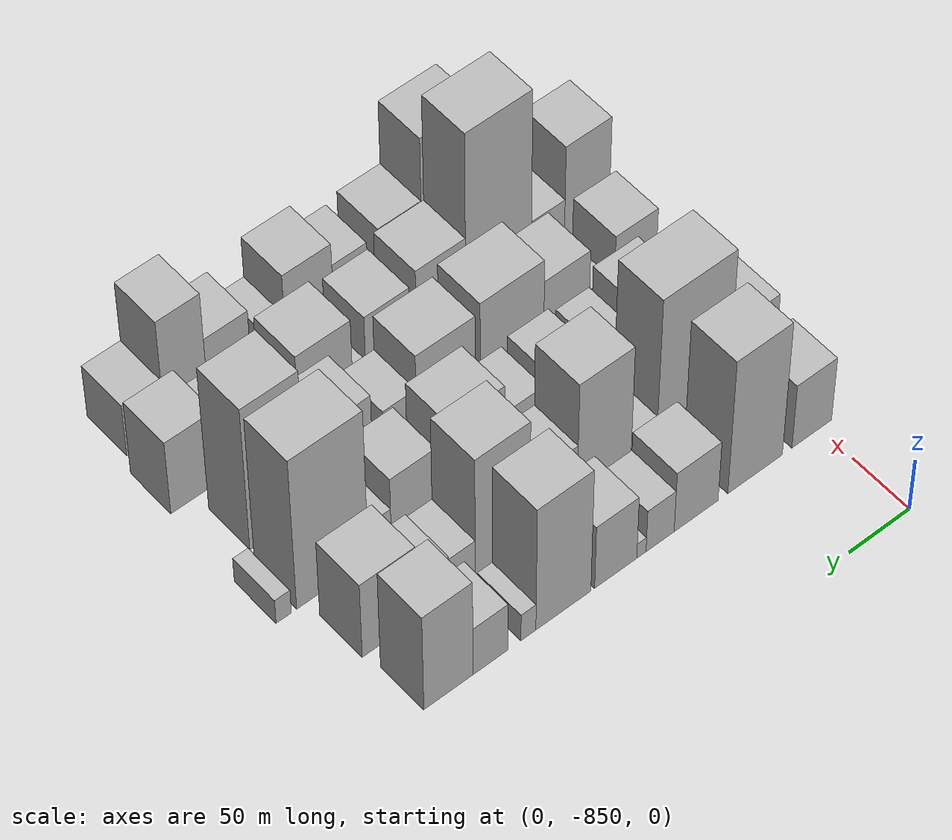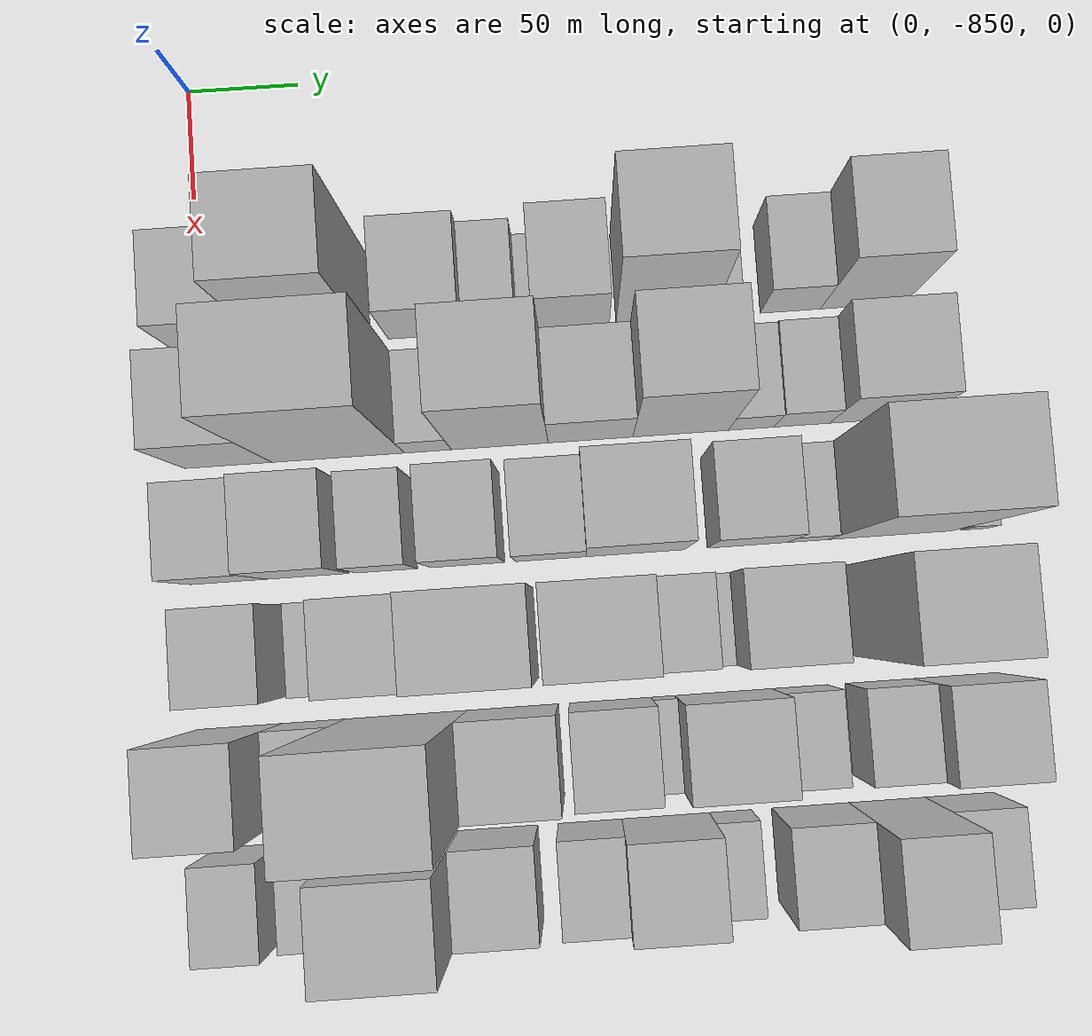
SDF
<sdf version="1.6">
 <world name="default">
  <model name="building_1">
   <static>1</static>
   <pose>100.0000 -843.3989 0 0.000000 0.000000 0.000000</pose>
   <link name="link">
    <pose>0 0 31.50 0 0 0</pose>
    <collision name="collision"><geometry><box><size>40.0000 33.2022 63.0000</size></box></geometry></collision>
    <visual name="visual">
     <cast_shadows>0</cast_shadows>
     <geometry><box><size>40.0000 33.2022 63.0000</size></box></geometry>
     <material>
      <script>
       <uri>model://HANNAS_wall/materials/scripts</uri>
       <uri>model://HANNAS_wall/materials/textures</uri>
       <name>vrc/HANNAS_wall</name>
      </script>
     </material>
    </visual>
   </link>
  </model>
  <model name="building_2">
   <static>1</static>
   <pose>100.0000 -796.2391 0 0.000000 0.000000 0.000000</pose>
   <link name="link">
    <pose>0 0 66.00 0 0 0</pose>
    <collision name="collision"><geometry><box><size>40.0000 45.1174 132.0000</size></box></geometry></collision>
    <visual name="visual">
     <cast_shadows>0</cast_shadows>
     <geometry><box><size>40.0000 45.1174 132.0000</size></box></geometry>
     <material>
      <script>
       <uri>model://HANNAS_wall/materials/scripts</uri>
       <uri>model://HANNAS_wall/materials/textures</uri>
       <name>vrc/HANNAS_wall</name>
      </script>
     </material>
    </visual>
   </link>
  </model>
  <model name="building_3">
   <static>1</static>
   <pose>100.0000 -747.7639 0 0.000000 0.000000 0.000000</pose>
   <link name="link">
    <pose>0 0 30.00 0 0 0</pose>
    <collision name="collision"><geometry><box><size>40.0000 35.8329 60.0000</size></box></geometry></collision>
    <visual name="visual">
     <cast_shadows>0</cast_shadows>
     <geometry><box><size>40.0000 35.8329 60.0000</size></box></geometry>
     <material>
      <script>
       <uri>model://HANNAS_wall/materials/scripts</uri>
       <uri>model://HANNAS_wall/materials/textures</uri>
       <name>vrc/HANNAS_wall</name>
      </script>
     </material>
    </visual>
   </link>
  </model>
  <model name="building_4">
   <static>1</static>
   <pose>100.0000 -718.4597 0 0.000000 0.000000 0.000000</pose>
   <link name="link">
    <pose>0 0 21.00 0 0 0</pose>
    <collision name="collision"><geometry><box><size>40.0000 22.7755 42.0000</size></box></geometry></collision>
    <visual name="visual">
     <cast_shadows>0</cast_shadows>
     <geometry><box><size>40.0000 22.7755 42.0000</size></box></geometry>
     <material>
      <script>
       <uri>model://HANNAS_wall/materials/scripts</uri>
       <uri>model://HANNAS_wall/materials/textures</uri>
       <name>vrc/HANNAS_wall</name>
      </script>
     </material>
    </visual>
   </link>
  </model>
  <model name="building_5">
   <static>1</static>
   <pose>100.0000 -703.3240 0 0.000000 0.000000 0.000000</pose>
   <link name="link">
    <pose>0 0 7.50 0 0 0</pose>
    <collision name="collision"><geometry><box><size>40.0000 7.4958 15.0000</size></box></geometry></collision>
    <visual name="visual">
     <cast_shadows>0</cast_shadows>
     <geometry><box><size>40.0000 7.4958 15.0000</size></box></geometry>
     <material>
      <script>
       <uri>model://HANNAS_wall/materials/scripts</uri>
       <uri>model://HANNAS_wall/materials/textures</uri>
       <name>vrc/HANNAS_wall</name>
      </script>
     </material>
    </visual>
   </link>
  </model>
  <model name="building_6">
   <static>1</static>
   <pose>100.0000 -682.7503 0 0.000000 0.000000 0.000000</pose>
   <link name="link">
    <pose>0 0 31.50 0 0 0</pose>
    <collision name="collision"><geometry><box><size>40.0000 33.6517 63.0000</size></box></geometry></collision>
    <visual name="visual">
     <cast_shadows>0</cast_shadows>
     <geometry><box><size>40.0000 33.6517 63.0000</size></box></geometry>
     <material>
      <script>
       <uri>model://HANNAS_wall/materials/scripts</uri>
       <uri>model://HANNAS_wall/materials/textures</uri>
       <name>vrc/HANNAS_wall</name>
      </script>
     </material>
    </visual>
   </link>
  </model>
  <model name="building_7">
   <static>1</static>
   <pose>100.0000 -641.1731 0 0.000000 0.000000 0.000000</pose>
   <link name="link">
    <pose>0 0 61.50 0 0 0</pose>
    <collision name="collision"><geometry><box><size>40.0000 43.5027 123.0000</size></box></geometry></collision>
    <visual name="visual">
     <cast_shadows>0</cast_shadows>
     <geometry><box><size>40.0000 43.5027 123.0000</size></box></geometry>
     <material>
      <script>
       <uri>model://HANNAS_wall/materials/scripts</uri>
       <uri>model://HANNAS_wall/materials/textures</uri>
       <name>vrc/HANNAS_wall</name>
      </script>
     </material>
    </visual>
   </link>
  </model>
  <model name="building_8">
   <static>1</static>
   <pose>100.0000 -613.5712 0 0.000000 0.000000 0.000000</pose>
   <link name="link">
    <pose>0 0 13.50 0 0 0</pose>
    <collision name="collision"><geometry><box><size>40.0000 11.7012 27.0000</size></box></geometry></collision>
    <visual name="visual">
     <cast_shadows>0</cast_shadows>
     <geometry><box><size>40.0000 11.7012 27.0000</size></box></geometry>
     <material>
      <script>
       <uri>model://HANNAS_wall/materials/scripts</uri>
       <uri>model://HANNAS_wall/materials/textures</uri>
       <name>vrc/HANNAS_wall</name>
      </script>
     </material>
    </visual>
   </link>
  </model>
  <model name="building_9">
   <static>1</static>
   <pose>100.0000 -584.1085 0 0.000000 0.000000 0.000000</pose>
   <link name="link">
    <pose>0 0 24.00 0 0 0</pose>
    <collision name="collision"><geometry><box><size>40.0000 27.2240 48.0000</size></box></geometry></collision>
    <visual name="visual">
     <cast_shadows>0</cast_shadows>
     <geometry><box><size>40.0000 27.2240 48.0000</size></box></geometry>
     <material>
      <script>
       <uri>model://HANNAS_wall/materials/scripts</uri>
       <uri>model://HANNAS_wall/materials/textures</uri>
       <name>vrc/HANNAS_wall</name>
      </script>
     </material>
    </visual>
   </link>
  </model>
  <model name="building_10">
   <static>1</static>
   <pose>100.0000 -551.5322 0 0.000000 0.000000 0.000000</pose>
   <link name="link">
    <pose>0 0 48.00 0 0 0</pose>
    <collision name="collision"><geometry><box><size>40.0000 37.9287 96.0000</size></box></geometry></collision>
    <visual name="visual">
     <cast_shadows>0</cast_shadows>
     <geometry><box><size>40.0000 37.9287 96.0000</size></box></geometry>
     <material>
      <script>
       <uri>model://HANNAS_wall/materials/scripts</uri>
       <uri>model://HANNAS_wall/materials/textures</uri>
       <name>vrc/HANNAS_wall</name>
      </script>
     </material>
    </visual>
   </link>
  </model>
  <model name="building_57">
   <static>1</static>
   <pose>152.0000 -840.4779 0 0.000000 0.000000 0.000000</pose>
   <link name="link">
    <pose>0 0 37.50 0 0 0</pose>
    <collision name="collision"><geometry><box><size>40.0000 39.0442 75.0000</size></box></geometry></collision>
    <visual name="visual">
     <cast_shadows>0</cast_shadows>
     <geometry><box><size>40.0000 39.0442 75.0000</size></box></geometry>
     <material>
      <script>
       <uri>model://HANNAS_wall/materials/scripts</uri>
       <uri>model://HANNAS_wall/materials/textures</uri>
       <name>vrc/HANNAS_wall</name>
      </script>
     </material>
    </visual>
   </link>
  </model>
  <model name="building_58">
   <static>1</static>
   <pose>152.0000 -791.2860 0 0.000000 0.000000 0.000000</pose>
   <link name="link">
    <pose>0 0 75.00 0 0 0</pose>
    <collision name="collision"><geometry><box><size>40.0000 59.3396 150.0000</size></box></geometry></collision>
    <visual name="visual">
     <cast_shadows>0</cast_shadows>
     <geometry><box><size>40.0000 59.3396 150.0000</size></box></geometry>
     <material>
      <script>
       <uri>model://HANNAS_wall/materials/scripts</uri>
       <uri>model://HANNAS_wall/materials/textures</uri>
       <name>vrc/HANNAS_wall</name>
      </script>
     </material>
    </visual>
   </link>
  </model>
  <model name="building_59">
   <static>1</static>
   <pose>152.0000 -751.0752 0 0.000000 0.000000 0.000000</pose>
   <link name="link">
    <pose>0 0 18.00 0 0 0</pose>
    <collision name="collision"><geometry><box><size>40.0000 21.0821 36.0000</size></box></geometry></collision>
    <visual name="visual">
     <cast_shadows>0</cast_shadows>
     <geometry><box><size>40.0000 21.0821 36.0000</size></box></geometry>
     <material>
      <script>
       <uri>model://HANNAS_wall/materials/scripts</uri>
       <uri>model://HANNAS_wall/materials/textures</uri>
       <name>vrc/HANNAS_wall</name>
      </script>
     </material>
    </visual>
   </link>
  </model>
  <model name="building_60">
   <static>1</static>
   <pose>152.0000 -718.7713 0 0.000000 0.000000 0.000000</pose>
   <link name="link">
    <pose>0 0 61.50 0 0 0</pose>
    <collision name="collision"><geometry><box><size>40.0000 43.5258 123.0000</size></box></geometry></collision>
    <visual name="visual">
     <cast_shadows>0</cast_shadows>
     <geometry><box><size>40.0000 43.5258 123.0000</size></box></geometry>
     <material>
      <script>
       <uri>model://HANNAS_wall/materials/scripts</uri>
       <uri>model://HANNAS_wall/materials/textures</uri>
       <name>vrc/HANNAS_wall</name>
      </script>
     </material>
    </visual>
   </link>
  </model>
  <model name="building_61">
   <static>1</static>
   <pose>152.0000 -678.1103 0 0.000000 0.000000 0.000000</pose>
   <link name="link">
    <pose>0 0 31.50 0 0 0</pose>
    <collision name="collision"><geometry><box><size>40.0000 37.7961 63.0000</size></box></geometry></collision>
    <visual name="visual">
     <cast_shadows>0</cast_shadows>
     <geometry><box><size>40.0000 37.7961 63.0000</size></box></geometry>
     <material>
      <script>
       <uri>model://HANNAS_wall/materials/scripts</uri>
       <uri>model://HANNAS_wall/materials/textures</uri>
       <name>vrc/HANNAS_wall</name>
      </script>
     </material>
    </visual>
   </link>
  </model>
  <model name="building_62">
   <static>1</static>
   <pose>152.0000 -637.7423 0 0.000000 0.000000 0.000000</pose>
   <link name="link">
    <pose>0 0 60.00 0 0 0</pose>
    <collision name="collision"><geometry><box><size>40.0000 42.9400 120.0000</size></box></geometry></collision>
    <visual name="visual">
     <cast_shadows>0</cast_shadows>
     <geometry><box><size>40.0000 42.9400 120.0000</size></box></geometry>
     <material>
      <script>
       <uri>model://HANNAS_wall/materials/scripts</uri>
       <uri>model://HANNAS_wall/materials/textures</uri>
       <name>vrc/HANNAS_wall</name>
      </script>
     </material>
    </visual>
   </link>
  </model>
  <model name="building_63">
   <static>1</static>
   <pose>152.0000 -605.9749 0 0.000000 0.000000 0.000000</pose>
   <link name="link">
    <pose>0 0 19.50 0 0 0</pose>
    <collision name="collision"><geometry><box><size>40.0000 20.5949 39.0000</size></box></geometry></collision>
    <visual name="visual">
     <cast_shadows>0</cast_shadows>
     <geometry><box><size>40.0000 20.5949 39.0000</size></box></geometry>
     <material>
      <script>
       <uri>model://HANNAS_wall/materials/scripts</uri>
       <uri>model://HANNAS_wall/materials/textures</uri>
       <name>vrc/HANNAS_wall</name>
      </script>
     </material>
    </visual>
   </link>
  </model>
  <model name="building_64">
   <static>1</static>
   <pose>152.0000 -583.1113 0 0.000000 0.000000 0.000000</pose>
   <link name="link">
    <pose>0 0 21.00 0 0 0</pose>
    <collision name="collision"><geometry><box><size>40.0000 25.1323 42.0000</size></box></geometry></collision>
    <visual name="visual">
     <cast_shadows>0</cast_shadows>
     <geometry><box><size>40.0000 25.1323 42.0000</size></box></geometry>
     <material>
      <script>
       <uri>model://HANNAS_wall/materials/scripts</uri>
       <uri>model://HANNAS_wall/materials/textures</uri>
       <name>vrc/HANNAS_wall</name>
      </script>
     </material>
    </visual>
   </link>
  </model>
  <model name="building_65">
   <static>1</static>
   <pose>152.0000 -549.5012 0 0.000000 0.000000 0.000000</pose>
   <link name="link">
    <pose>0 0 37.50 0 0 0</pose>
    <collision name="collision"><geometry><box><size>40.0000 42.0879 75.0000</size></box></geometry></collision>
    <visual name="visual">
     <cast_shadows>0</cast_shadows>
     <geometry><box><size>40.0000 42.0879 75.0000</size></box></geometry>
     <material>
      <script>
       <uri>model://HANNAS_wall/materials/scripts</uri>
       <uri>model://HANNAS_wall/materials/textures</uri>
       <name>vrc/HANNAS_wall</name>
      </script>
     </material>
    </visual>
   </link>
  </model>
  <model name="building_106">
   <static>1</static>
   <pose>204.0000 -842.9512 0 0.000000 0.000000 0.000000</pose>
   <link name="link">
    <pose>0 0 30.00 0 0 0</pose>
    <collision name="collision"><geometry><box><size>40.0000 34.0976 60.0000</size></box></geometry></collision>
    <visual name="visual">
     <cast_shadows>0</cast_shadows>
     <geometry><box><size>40.0000 34.0976 60.0000</size></box></geometry>
     <material>
      <script>
       <uri>model://HANNAS_wall/materials/scripts</uri>
       <uri>model://HANNAS_wall/materials/textures</uri>
       <name>vrc/HANNAS_wall</name>
      </script>
     </material>
    </visual>
   </link>
  </model>
  <model name="building_107">
   <static>1</static>
   <pose>204.0000 -807.5186 0 0.000000 0.000000 0.000000</pose>
   <link name="link">
    <pose>0 0 36.00 0 0 0</pose>
    <collision name="collision"><geometry><box><size>40.0000 36.7675 72.0000</size></box></geometry></collision>
    <visual name="visual">
     <cast_shadows>0</cast_shadows>
     <geometry><box><size>40.0000 36.7675 72.0000</size></box></geometry>
     <material>
      <script>
       <uri>model://HANNAS_wall/materials/scripts</uri>
       <uri>model://HANNAS_wall/materials/textures</uri>
       <name>vrc/HANNAS_wall</name>
      </script>
     </material>
    </visual>
   </link>
  </model>
  <model name="building_108">
   <static>1</static>
   <pose>204.0000 -772.5752 0 0.000000 0.000000 0.000000</pose>
   <link name="link">
    <pose>0 0 27.00 0 0 0</pose>
    <collision name="collision"><geometry><box><size>40.0000 27.1193 54.0000</size></box></geometry></collision>
    <visual name="visual">
     <cast_shadows>0</cast_shadows>
     <geometry><box><size>40.0000 27.1193 54.0000</size></box></geometry>
     <material>
      <script>
       <uri>model://HANNAS_wall/materials/scripts</uri>
       <uri>model://HANNAS_wall/materials/textures</uri>
       <name>vrc/HANNAS_wall</name>
      </script>
     </material>
    </visual>
   </link>
  </model>
  <model name="building_109">
   <static>1</static>
   <pose>204.0000 -736.5314 0 0.000000 0.000000 0.000000</pose>
   <link name="link">
    <pose>0 0 30.00 0 0 0</pose>
    <collision name="collision"><geometry><box><size>40.0000 32.9684 60.0000</size></box></geometry></collision>
    <visual name="visual">
     <cast_shadows>0</cast_shadows>
     <geometry><box><size>40.0000 32.9684 60.0000</size></box></geometry>
     <material>
      <script>
       <uri>model://HANNAS_wall/materials/scripts</uri>
       <uri>model://HANNAS_wall/materials/textures</uri>
       <name>vrc/HANNAS_wall</name>
      </script>
     </material>
    </visual>
   </link>
  </model>
  <model name="building_110">
   <static>1</static>
   <pose>204.0000 -699.4011 0 0.000000 0.000000 0.000000</pose>
   <link name="link">
    <pose>0 0 27.00 0 0 0</pose>
    <collision name="collision"><geometry><box><size>40.0000 31.2922 54.0000</size></box></geometry></collision>
    <visual name="visual">
     <cast_shadows>0</cast_shadows>
     <geometry><box><size>40.0000 31.2922 54.0000</size></box></geometry>
     <material>
      <script>
       <uri>model://HANNAS_wall/materials/scripts</uri>
       <uri>model://HANNAS_wall/materials/textures</uri>
       <name>vrc/HANNAS_wall</name>
      </script>
     </material>
    </visual>
   </link>
  </model>
  <model name="building_111">
   <static>1</static>
   <pose>204.0000 -661.7496 0 0.000000 0.000000 0.000000</pose>
   <link name="link">
    <pose>0 0 40.50 0 0 0</pose>
    <collision name="collision"><geometry><box><size>40.0000 44.0109 81.0000</size></box></geometry></collision>
    <visual name="visual">
     <cast_shadows>0</cast_shadows>
     <geometry><box><size>40.0000 44.0109 81.0000</size></box></geometry>
     <material>
      <script>
       <uri>model://HANNAS_wall/materials/scripts</uri>
       <uri>model://HANNAS_wall/materials/textures</uri>
       <name>vrc/HANNAS_wall</name>
      </script>
     </material>
    </visual>
   </link>
  </model>
  <model name="building_112">
   <static>1</static>
   <pose>204.0000 -611.8717 0 0.000000 0.000000 0.000000</pose>
   <link name="link">
    <pose>0 0 33.00 0 0 0</pose>
    <collision name="collision"><geometry><box><size>40.0000 35.7449 66.0000</size></box></geometry></collision>
    <visual name="visual">
     <cast_shadows>0</cast_shadows>
     <geometry><box><size>40.0000 35.7449 66.0000</size></box></geometry>
     <material>
      <script>
       <uri>model://HANNAS_wall/materials/scripts</uri>
       <uri>model://HANNAS_wall/materials/textures</uri>
       <name>vrc/HANNAS_wall</name>
      </script>
     </material>
    </visual>
   </link>
  </model>
  <model name="building_113">
   <static>1</static>
   <pose>204.0000 -584.9540 0 0.000000 0.000000 0.000000</pose>
   <link name="link">
    <pose>0 0 18.00 0 0 0</pose>
    <collision name="collision"><geometry><box><size>40.0000 18.0905 36.0000</size></box></geometry></collision>
    <visual name="visual">
     <cast_shadows>0</cast_shadows>
     <geometry><box><size>40.0000 18.0905 36.0000</size></box></geometry>
     <material>
      <script>
       <uri>model://HANNAS_wall/materials/scripts</uri>
       <uri>model://HANNAS_wall/materials/textures</uri>
       <name>vrc/HANNAS_wall</name>
      </script>
     </material>
    </visual>
   </link>
  </model>
  <model name="building_114">
   <static>1</static>
   <pose>204.0000 -548.1578 0 0.000000 0.000000 0.000000</pose>
   <link name="link">
    <pose>0 0 75.00 0 0 0</pose>
    <collision name="collision"><geometry><box><size>40.0000 55.5019 150.0000</size></box></geometry></collision>
    <visual name="visual">
     <cast_shadows>0</cast_shadows>
     <geometry><box><size>40.0000 55.5019 150.0000</size></box></geometry>
     <material>
      <script>
       <uri>model://HANNAS_wall/materials/scripts</uri>
       <uri>model://HANNAS_wall/materials/textures</uri>
       <name>vrc/HANNAS_wall</name>
      </script>
     </material>
    </visual>
   </link>
  </model>
  <model name="building_115">
   <static>1</static>
   <pose>204.0000 -510.5552 0 0.000000 0.000000 0.000000</pose>
   <link name="link">
    <pose>0 0 12.00 0 0 0</pose>
    <collision name="collision"><geometry><box><size>40.0000 11.7034 24.0000</size></box></geometry></collision>
    <visual name="visual">
     <cast_shadows>0</cast_shadows>
     <geometry><box><size>40.0000 11.7034 24.0000</size></box></geometry>
     <material>
      <script>
       <uri>model://HANNAS_wall/materials/scripts</uri>
       <uri>model://HANNAS_wall/materials/textures</uri>
       <name>vrc/HANNAS_wall</name>
      </script>
     </material>
    </visual>
   </link>
  </model>
  <model name="building_160">
   <static>1</static>
   <pose>256.0000 -856.7892 0 0.000000 0.000000 0.000000</pose>
   <link name="link">
    <pose>0 0 7.50 0 0 0</pose>
    <collision name="collision"><geometry><box><size>40.0000 6.4216 15.0000</size></box></geometry></collision>
    <visual name="visual">
     <cast_shadows>0</cast_shadows>
     <geometry><box><size>40.0000 6.4216 15.0000</size></box></geometry>
     <material>
      <script>
       <uri>model://HANNAS_wall/materials/scripts</uri>
       <uri>model://HANNAS_wall/materials/textures</uri>
       <name>vrc/HANNAS_wall</name>
      </script>
     </material>
    </visual>
   </link>
  </model>
  <model name="building_161">
   <static>1</static>
   <pose>256.0000 -836.0364 0 0.000000 0.000000 0.000000</pose>
   <link name="link">
    <pose>0 0 33.00 0 0 0</pose>
    <collision name="collision"><geometry><box><size>40.0000 35.0839 66.0000</size></box></geometry></collision>
    <visual name="visual">
     <cast_shadows>0</cast_shadows>
     <geometry><box><size>40.0000 35.0839 66.0000</size></box></geometry>
     <material>
      <script>
       <uri>model://HANNAS_wall/materials/scripts</uri>
       <uri>model://HANNAS_wall/materials/textures</uri>
       <name>vrc/HANNAS_wall</name>
      </script>
     </material>
    </visual>
   </link>
  </model>
  <model name="building_162">
   <static>1</static>
   <pose>256.0000 -806.0644 0 0.000000 0.000000 0.000000</pose>
   <link name="link">
    <pose>0 0 15.00 0 0 0</pose>
    <collision name="collision"><geometry><box><size>40.0000 16.8603 30.0000</size></box></geometry></collision>
    <visual name="visual">
     <cast_shadows>0</cast_shadows>
     <geometry><box><size>40.0000 16.8603 30.0000</size></box></geometry>
     <material>
      <script>
       <uri>model://HANNAS_wall/materials/scripts</uri>
       <uri>model://HANNAS_wall/materials/textures</uri>
       <name>vrc/HANNAS_wall</name>
      </script>
     </material>
    </visual>
   </link>
  </model>
  <model name="building_163">
   <static>1</static>
   <pose>256.0000 -778.8346 0 0.000000 0.000000 0.000000</pose>
   <link name="link">
    <pose>0 0 34.50 0 0 0</pose>
    <collision name="collision"><geometry><box><size>40.0000 37.5993 69.0000</size></box></geometry></collision>
    <visual name="visual">
     <cast_shadows>0</cast_shadows>
     <geometry><box><size>40.0000 37.5993 69.0000</size></box></geometry>
     <material>
      <script>
       <uri>model://HANNAS_wall/materials/scripts</uri>
       <uri>model://HANNAS_wall/materials/textures</uri>
       <name>vrc/HANNAS_wall</name>
      </script>
     </material>
    </visual>
   </link>
  </model>
  <model name="building_164">
   <static>1</static>
   <pose>256.0000 -734.2265 0 0.000000 0.000000 0.000000</pose>
   <link name="link">
    <pose>0 0 45.00 0 0 0</pose>
    <collision name="collision"><geometry><box><size>40.0000 51.6168 90.0000</size></box></geometry></collision>
    <visual name="visual">
     <cast_shadows>0</cast_shadows>
     <geometry><box><size>40.0000 51.6168 90.0000</size></box></geometry>
     <material>
      <script>
       <uri>model://HANNAS_wall/materials/scripts</uri>
       <uri>model://HANNAS_wall/materials/textures</uri>
       <name>vrc/HANNAS_wall</name>
      </script>
     </material>
    </visual>
   </link>
  </model>
  <model name="building_165">
   <static>1</static>
   <pose>256.0000 -680.8425 0 0.000000 0.000000 0.000000</pose>
   <link name="link">
    <pose>0 0 40.50 0 0 0</pose>
    <collision name="collision"><geometry><box><size>40.0000 47.1511 81.0000</size></box></geometry></collision>
    <visual name="visual">
     <cast_shadows>0</cast_shadows>
     <geometry><box><size>40.0000 47.1511 81.0000</size></box></geometry>
     <material>
      <script>
       <uri>model://HANNAS_wall/materials/scripts</uri>
       <uri>model://HANNAS_wall/materials/textures</uri>
       <name>vrc/HANNAS_wall</name>
      </script>
     </material>
    </visual>
   </link>
  </model>
  <model name="building_166">
   <static>1</static>
   <pose>256.0000 -644.1709 0 0.000000 0.000000 0.000000</pose>
   <link name="link">
    <pose>0 0 24.00 0 0 0</pose>
    <collision name="collision"><geometry><box><size>40.0000 26.1921 48.0000</size></box></geometry></collision>
    <visual name="visual">
     <cast_shadows>0</cast_shadows>
     <geometry><box><size>40.0000 26.1921 48.0000</size></box></geometry>
     <material>
      <script>
       <uri>model://HANNAS_wall/materials/scripts</uri>
       <uri>model://HANNAS_wall/materials/textures</uri>
       <name>vrc/HANNAS_wall</name>
      </script>
     </material>
    </visual>
   </link>
  </model>
  <model name="building_167">
   <static>1</static>
   <pose>256.0000 -626.6608 0 0.000000 0.000000 0.000000</pose>
   <link name="link">
    <pose>0 0 9.00 0 0 0</pose>
    <collision name="collision"><geometry><box><size>40.0000 8.8281 18.0000</size></box></geometry></collision>
    <visual name="visual">
     <cast_shadows>0</cast_shadows>
     <geometry><box><size>40.0000 8.8281 18.0000</size></box></geometry>
     <material>
      <script>
       <uri>model://HANNAS_wall/materials/scripts</uri>
       <uri>model://HANNAS_wall/materials/textures</uri>
       <name>vrc/HANNAS_wall</name>
      </script>
     </material>
    </visual>
   </link>
  </model>
  <model name="building_168">
   <static>1</static>
   <pose>256.0000 -601.9131 0 0.000000 0.000000 0.000000</pose>
   <link name="link">
    <pose>0 0 36.00 0 0 0</pose>
    <collision name="collision"><geometry><box><size>40.0000 40.6674 72.0000</size></box></geometry></collision>
    <visual name="visual">
     <cast_shadows>0</cast_shadows>
     <geometry><box><size>40.0000 40.6674 72.0000</size></box></geometry>
     <material>
      <script>
       <uri>model://HANNAS_wall/materials/scripts</uri>
       <uri>model://HANNAS_wall/materials/textures</uri>
       <name>vrc/HANNAS_wall</name>
      </script>
     </material>
    </visual>
   </link>
  </model>
  <model name="building_169">
   <static>1</static>
   <pose>256.0000 -578.1219 0 0.000000 0.000000 0.000000</pose>
   <link name="link">
    <pose>0 0 7.50 0 0 0</pose>
    <collision name="collision"><geometry><box><size>40.0000 6.9148 15.0000</size></box></geometry></collision>
    <visual name="visual">
     <cast_shadows>0</cast_shadows>
     <geometry><box><size>40.0000 6.9148 15.0000</size></box></geometry>
     <material>
      <script>
       <uri>model://HANNAS_wall/materials/scripts</uri>
       <uri>model://HANNAS_wall/materials/textures</uri>
       <name>vrc/HANNAS_wall</name>
      </script>
     </material>
    </visual>
   </link>
  </model>
  <model name="building_170">
   <static>1</static>
   <pose>256.0000 -547.8730 0 0.000000 0.000000 0.000000</pose>
   <link name="link">
    <pose>0 0 70.50 0 0 0</pose>
    <collision name="collision"><geometry><box><size>40.0000 43.5831 141.0000</size></box></geometry></collision>
    <visual name="visual">
     <cast_shadows>0</cast_shadows>
     <geometry><box><size>40.0000 43.5831 141.0000</size></box></geometry>
     <material>
      <script>
       <uri>model://HANNAS_wall/materials/scripts</uri>
       <uri>model://HANNAS_wall/materials/textures</uri>
       <name>vrc/HANNAS_wall</name>
      </script>
     </material>
    </visual>
   </link>
  </model>
  <model name="building_211">
   <static>1</static>
   <pose>308.0000 -841.1325 0 0.000000 0.000000 0.000000</pose>
   <link name="link">
    <pose>0 0 51.00 0 0 0</pose>
    <collision name="collision"><geometry><box><size>40.0000 37.7349 102.0000</size></box></geometry></collision>
    <visual name="visual">
     <cast_shadows>0</cast_shadows>
     <geometry><box><size>40.0000 37.7349 102.0000</size></box></geometry>
     <material>
      <script>
       <uri>model://HANNAS_wall/materials/scripts</uri>
       <uri>model://HANNAS_wall/materials/textures</uri>
       <name>vrc/HANNAS_wall</name>
      </script>
     </material>
    </visual>
   </link>
  </model>
  <model name="building_212">
   <static>1</static>
   <pose>308.0000 -808.3826 0 0.000000 0.000000 0.000000</pose>
   <link name="link">
    <pose>0 0 25.50 0 0 0</pose>
    <collision name="collision"><geometry><box><size>40.0000 27.7649 51.0000</size></box></geometry></collision>
    <visual name="visual">
     <cast_shadows>0</cast_shadows>
     <geometry><box><size>40.0000 27.7649 51.0000</size></box></geometry>
     <material>
      <script>
       <uri>model://HANNAS_wall/materials/scripts</uri>
       <uri>model://HANNAS_wall/materials/textures</uri>
       <name>vrc/HANNAS_wall</name>
      </script>
     </material>
    </visual>
   </link>
  </model>
  <model name="building_213">
   <static>1</static>
   <pose>308.0000 -767.5671 0 0.000000 0.000000 0.000000</pose>
   <link name="link">
    <pose>0 0 88.50 0 0 0</pose>
    <collision name="collision"><geometry><box><size>40.0000 53.8661 177.0000</size></box></geometry></collision>
    <visual name="visual">
     <cast_shadows>0</cast_shadows>
     <geometry><box><size>40.0000 53.8661 177.0000</size></box></geometry>
     <material>
      <script>
       <uri>model://HANNAS_wall/materials/scripts</uri>
       <uri>model://HANNAS_wall/materials/textures</uri>
       <name>vrc/HANNAS_wall</name>
      </script>
     </material>
    </visual>
   </link>
  </model>
  <model name="building_214">
   <static>1</static>
   <pose>308.0000 -720.5956 0 0.000000 0.000000 0.000000</pose>
   <link name="link">
    <pose>0 0 39.00 0 0 0</pose>
    <collision name="collision"><geometry><box><size>40.0000 40.0770 78.0000</size></box></geometry></collision>
    <visual name="visual">
     <cast_shadows>0</cast_shadows>
     <geometry><box><size>40.0000 40.0770 78.0000</size></box></geometry>
     <material>
      <script>
       <uri>model://HANNAS_wall/materials/scripts</uri>
       <uri>model://HANNAS_wall/materials/textures</uri>
       <name>vrc/HANNAS_wall</name>
      </script>
     </material>
    </visual>
   </link>
  </model>
  <model name="building_215">
   <static>1</static>
   <pose>308.0000 -677.6170 0 0.000000 0.000000 0.000000</pose>
   <link name="link">
    <pose>0 0 33.00 0 0 0</pose>
    <collision name="collision"><geometry><box><size>40.0000 35.8802 66.0000</size></box></geometry></collision>
    <visual name="visual">
     <cast_shadows>0</cast_shadows>
     <geometry><box><size>40.0000 35.8802 66.0000</size></box></geometry>
     <material>
      <script>
       <uri>model://HANNAS_wall/materials/scripts</uri>
       <uri>model://HANNAS_wall/materials/textures</uri>
       <name>vrc/HANNAS_wall</name>
      </script>
     </material>
    </visual>
   </link>
  </model>
  <model name="building_216">
   <static>1</static>
   <pose>308.0000 -654.4115 0 0.000000 0.000000 0.000000</pose>
   <link name="link">
    <pose>0 0 12.00 0 0 0</pose>
    <collision name="collision"><geometry><box><size>40.0000 10.5307 24.0000</size></box></geometry></collision>
    <visual name="visual">
     <cast_shadows>0</cast_shadows>
     <geometry><box><size>40.0000 10.5307 24.0000</size></box></geometry>
     <material>
      <script>
       <uri>model://HANNAS_wall/materials/scripts</uri>
       <uri>model://HANNAS_wall/materials/textures</uri>
       <name>vrc/HANNAS_wall</name>
      </script>
     </material>
    </visual>
   </link>
  </model>
  <model name="building_217">
   <static>1</static>
   <pose>308.0000 -627.5959 0 0.000000 0.000000 0.000000</pose>
   <link name="link">
    <pose>0 0 36.00 0 0 0</pose>
    <collision name="collision"><geometry><box><size>40.0000 43.1005 72.0000</size></box></geometry></collision>
    <visual name="visual">
     <cast_shadows>0</cast_shadows>
     <geometry><box><size>40.0000 43.1005 72.0000</size></box></geometry>
     <material>
      <script>
       <uri>model://HANNAS_wall/materials/scripts</uri>
       <uri>model://HANNAS_wall/materials/textures</uri>
       <name>vrc/HANNAS_wall</name>
      </script>
     </material>
    </visual>
   </link>
  </model>
  <model name="building_218">
   <static>1</static>
   <pose>308.0000 -593.7276 0 0.000000 0.000000 0.000000</pose>
   <link name="link">
    <pose>0 0 22.50 0 0 0</pose>
    <collision name="collision"><geometry><box><size>40.0000 24.6362 45.0000</size></box></geometry></collision>
    <visual name="visual">
     <cast_shadows>0</cast_shadows>
     <geometry><box><size>40.0000 24.6362 45.0000</size></box></geometry>
     <material>
      <script>
       <uri>model://HANNAS_wall/materials/scripts</uri>
       <uri>model://HANNAS_wall/materials/textures</uri>
       <name>vrc/HANNAS_wall</name>
      </script>
     </material>
    </visual>
   </link>
  </model>
  <model name="building_219">
   <static>1</static>
   <pose>308.0000 -558.6992 0 0.000000 0.000000 0.000000</pose>
   <link name="link">
    <pose>0 0 25.50 0 0 0</pose>
    <collision name="collision"><geometry><box><size>40.0000 29.4206 51.0000</size></box></geometry></collision>
    <visual name="visual">
     <cast_shadows>0</cast_shadows>
     <geometry><box><size>40.0000 29.4206 51.0000</size></box></geometry>
     <material>
      <script>
       <uri>model://HANNAS_wall/materials/scripts</uri>
       <uri>model://HANNAS_wall/materials/textures</uri>
       <name>vrc/HANNAS_wall</name>
      </script>
     </material>
    </visual>
   </link>
  </model>
  <model name="building_220">
   <static>1</static>
   <pose>308.0000 -525.0989 0 0.000000 0.000000 0.000000</pose>
   <link name="link">
    <pose>0 0 36.00 0 0 0</pose>
    <collision name="collision"><geometry><box><size>40.0000 37.7799 72.0000</size></box></geometry></collision>
    <visual name="visual">
     <cast_shadows>0</cast_shadows>
     <geometry><box><size>40.0000 37.7799 72.0000</size></box></geometry>
     <material>
      <script>
       <uri>model://HANNAS_wall/materials/scripts</uri>
       <uri>model://HANNAS_wall/materials/textures</uri>
       <name>vrc/HANNAS_wall</name>
      </script>
     </material>
    </visual>
   </link>
  </model>
  <model name="building_254">
   <static>1</static>
   <pose>360.0000 -840.0273 0 0.000000 0.000000 0.000000</pose>
   <link name="link">
    <pose>0 0 27.00 0 0 0</pose>
    <collision name="collision"><geometry><box><size>40.0000 27.9455 54.0000</size></box></geometry></collision>
    <visual name="visual">
     <cast_shadows>0</cast_shadows>
     <geometry><box><size>40.0000 27.9455 54.0000</size></box></geometry>
     <material>
      <script>
       <uri>model://HANNAS_wall/materials/scripts</uri>
       <uri>model://HANNAS_wall/materials/textures</uri>
       <name>vrc/HANNAS_wall</name>
      </script>
     </material>
    </visual>
   </link>
  </model>
  <model name="building_255">
   <static>1</static>
   <pose>360.0000 -811.0681 0 0.000000 0.000000 0.000000</pose>
   <link name="link">
    <pose>0 0 19.50 0 0 0</pose>
    <collision name="collision"><geometry><box><size>40.0000 21.9729 39.0000</size></box></geometry></collision>
    <visual name="visual">
     <cast_shadows>0</cast_shadows>
     <geometry><box><size>40.0000 21.9729 39.0000</size></box></geometry>
     <material>
      <script>
       <uri>model://HANNAS_wall/materials/scripts</uri>
       <uri>model://HANNAS_wall/materials/textures</uri>
       <name>vrc/HANNAS_wall</name>
      </script>
     </material>
    </visual>
   </link>
  </model>
  <model name="building_256">
   <static>1</static>
   <pose>360.0000 -771.6419 0 0.000000 0.000000 0.000000</pose>
   <link name="link">
    <pose>0 0 60.00 0 0 0</pose>
    <collision name="collision"><geometry><box><size>40.0000 46.8795 120.0000</size></box></geometry></collision>
    <visual name="visual">
     <cast_shadows>0</cast_shadows>
     <geometry><box><size>40.0000 46.8795 120.0000</size></box></geometry>
     <material>
      <script>
       <uri>model://HANNAS_wall/materials/scripts</uri>
       <uri>model://HANNAS_wall/materials/textures</uri>
       <name>vrc/HANNAS_wall</name>
      </script>
     </material>
    </visual>
   </link>
  </model>
  <model name="building_257">
   <static>1</static>
   <pose>360.0000 -730.7145 0 0.000000 0.000000 0.000000</pose>
   <link name="link">
    <pose>0 0 30.00 0 0 0</pose>
    <collision name="collision"><geometry><box><size>40.0000 34.9751 60.0000</size></box></geometry></collision>
    <visual name="visual">
     <cast_shadows>0</cast_shadows>
     <geometry><box><size>40.0000 34.9751 60.0000</size></box></geometry>
     <material>
      <script>
       <uri>model://HANNAS_wall/materials/scripts</uri>
       <uri>model://HANNAS_wall/materials/textures</uri>
       <name>vrc/HANNAS_wall</name>
      </script>
     </material>
    </visual>
   </link>
  </model>
  <model name="building_258">
   <static>1</static>
   <pose>360.0000 -690.2590 0 0.000000 0.000000 0.000000</pose>
   <link name="link">
    <pose>0 0 27.00 0 0 0</pose>
    <collision name="collision"><geometry><box><size>40.0000 27.9360 54.0000</size></box></geometry></collision>
    <visual name="visual">
     <cast_shadows>0</cast_shadows>
     <geometry><box><size>40.0000 27.9360 54.0000</size></box></geometry>
     <material>
      <script>
       <uri>model://HANNAS_wall/materials/scripts</uri>
       <uri>model://HANNAS_wall/materials/textures</uri>
       <name>vrc/HANNAS_wall</name>
      </script>
     </material>
    </visual>
   </link>
  </model>
  <model name="building_259">
   <static>1</static>
   <pose>360.0000 -657.0042 0 0.000000 0.000000 0.000000</pose>
   <link name="link">
    <pose>0 0 37.50 0 0 0</pose>
    <collision name="collision"><geometry><box><size>40.0000 38.5735 75.0000</size></box></geometry></collision>
    <visual name="visual">
     <cast_shadows>0</cast_shadows>
     <geometry><box><size>40.0000 38.5735 75.0000</size></box></geometry>
     <material>
      <script>
       <uri>model://HANNAS_wall/materials/scripts</uri>
       <uri>model://HANNAS_wall/materials/textures</uri>
       <name>vrc/HANNAS_wall</name>
      </script>
     </material>
    </visual>
   </link>
  </model>
  <model name="building_260">
   <static>1</static>
   <pose>360.0000 -628.5098 0 0.000000 0.000000 0.000000</pose>
   <link name="link">
    <pose>0 0 18.00 0 0 0</pose>
    <collision name="collision"><geometry><box><size>40.0000 18.4155 36.0000</size></box></geometry></collision>
    <visual name="visual">
     <cast_shadows>0</cast_shadows>
     <geometry><box><size>40.0000 18.4155 36.0000</size></box></geometry>
     <material>
      <script>
       <uri>model://HANNAS_wall/materials/scripts</uri>
       <uri>model://HANNAS_wall/materials/textures</uri>
       <name>vrc/HANNAS_wall</name>
      </script>
     </material>
    </visual>
   </link>
  </model>
  <model name="building_261">
   <static>1</static>
   <pose>360.0000 -593.2594 0 0.000000 0.000000 0.000000</pose>
   <link name="link">
    <pose>0 0 31.50 0 0 0</pose>
    <collision name="collision"><geometry><box><size>40.0000 34.0852 63.0000</size></box></geometry></collision>
    <visual name="visual">
     <cast_shadows>0</cast_shadows>
     <geometry><box><size>40.0000 34.0852 63.0000</size></box></geometry>
     <material>
      <script>
       <uri>model://HANNAS_wall/materials/scripts</uri>
       <uri>model://HANNAS_wall/materials/textures</uri>
       <name>vrc/HANNAS_wall</name>
      </script>
     </material>
    </visual>
   </link>
  </model>
  <model name="building_262">
   <static>1</static>
   <pose>360.0000 -559.3709 0 0.000000 0.000000 0.000000</pose>
   <link name="link">
    <pose>0 0 54.00 0 0 0</pose>
    <collision name="collision"><geometry><box><size>40.0000 33.6918 108.0000</size></box></geometry></collision>
    <visual name="visual">
     <cast_shadows>0</cast_shadows>
     <geometry><box><size>40.0000 33.6918 108.0000</size></box></geometry>
     <material>
      <script>
       <uri>model://HANNAS_wall/materials/scripts</uri>
       <uri>model://HANNAS_wall/materials/textures</uri>
       <name>vrc/HANNAS_wall</name>
      </script>
     </material>
    </visual>
   </link>
  </model>
  <model name="building_263">
   <static>1</static>
   <pose>360.0000 -527.4873 0 0.000000 0.000000 0.000000</pose>
   <link name="link">
    <pose>0 0 25.50 0 0 0</pose>
    <collision name="collision"><geometry><box><size>40.0000 30.0753 51.0000</size></box></geometry></collision>
    <visual name="visual">
     <cast_shadows>0</cast_shadows>
     <geometry><box><size>40.0000 30.0753 51.0000</size></box></geometry>
     <material>
      <script>
       <uri>model://HANNAS_wall/materials/scripts</uri>
       <uri>model://HANNAS_wall/materials/textures</uri>
       <name>vrc/HANNAS_wall</name>
      </script>
     </material>
    </visual>
   </link>
  </model>
 </world>
</sdf>
